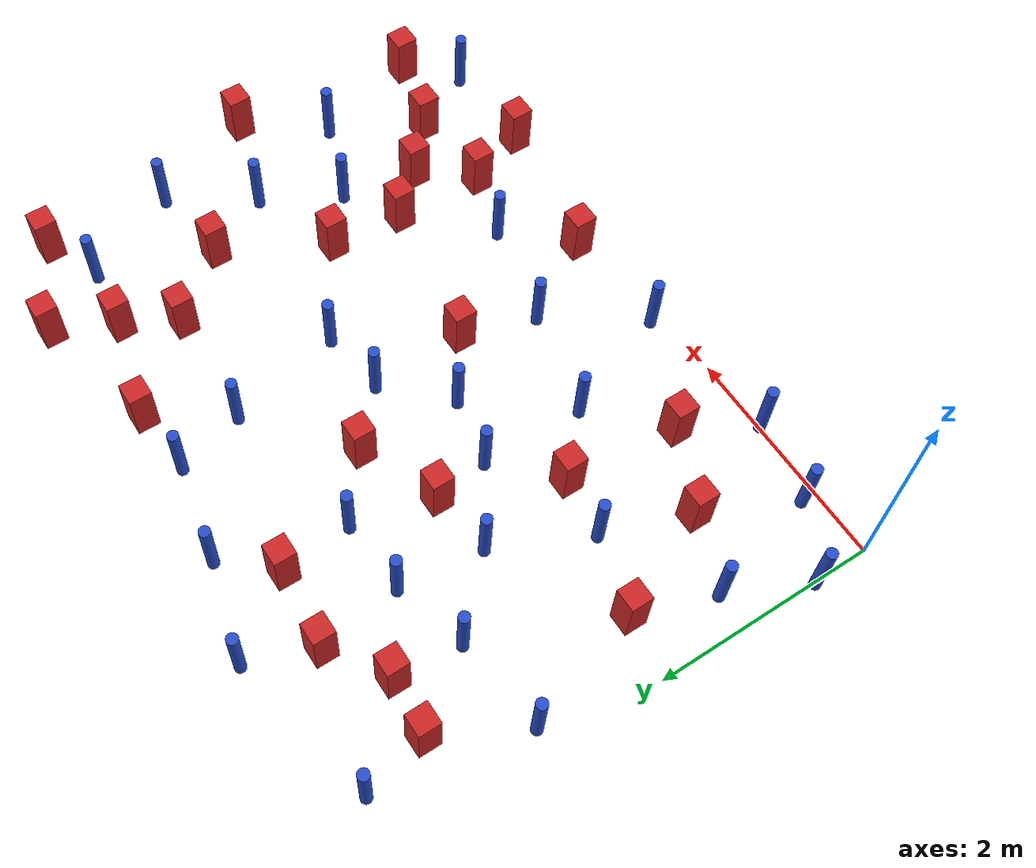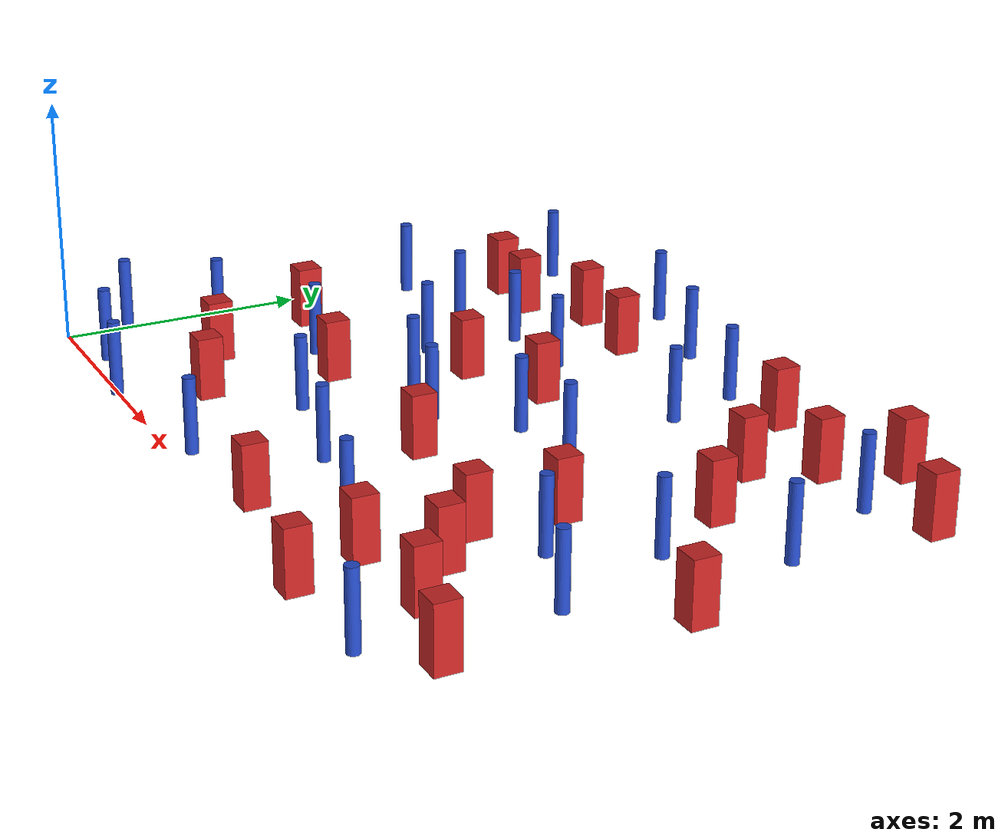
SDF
<sdf version="1.6">
 <model name="dense_10">
  <model name="pole_obstacle4">
   <static>true</static>
   <pose>6.03136823341 3.07508010178 -9.47619616065e-06 5.49618799738e-07 2.36310414051e-07 -1.55090534805e-07</pose>
   <link name="link">
    <pose>0 0 0.3 0 -0 0</pose>
    <inertial>
     <mass>1</mass>
     <inertia><ixx>0.145833</ixx><ixy>0</ixy><ixz>0</ixz><iyy>0.145833</iyy><iyz>0</iyz><izz>0.125</izz></inertia>
    </inertial>
    <collision name="collision">
     <geometry><cylinder><radius>0.05</radius><length>.6</length></cylinder></geometry>
    </collision>
    <visual name="visual">
     <geometry><cylinder><radius>0.05</radius><length>.6</length></cylinder></geometry>
     <material>
      <script><name>Gazebo/Blue</name><uri>file://media/materials/scripts/gazebo.material</uri></script>
     </material>
    </visual>
   </link>
  </model>
  <model name="square_post_obstacle9">
   <static>true</static>
   <pose>5.49992778663 0.636190954281 -6.11067671241e-07 -5.50515727128e-06 -8.79689657224e-07 2.37013304536e-05</pose>
   <link name="link">
    <pose>0 0 0.25 0 -0 0</pose>
    <inertial>
     <mass>100</mass>
     <inertia>
      <ixx>0.166667</ixx>
      <ixy>0</ixy>
      <ixz>0</ixz>
      <iyy>0.166667</iyy>
      <iyz>0</iyz>
      <izz>0.166667</izz>
     </inertia>
    </inertial>
    <collision name="collision"><geometry><box><size>.2 .2 .5</size></box></geometry></collision>
    <visual name="visual">
     <geometry><box><size>.2 .2 .5</size></box></geometry>
     <material>
      <script><name>Gazebo/Red</name><uri>file://media/materials/scripts/gazebo.material</uri></script>
     </material>
    </visual>
   </link>
  </model>
  <model name="square_post_obstacle21">
   <static>true</static>
   <pose>4.76312795238 3.55337894419 -6.11067671241e-07 -5.50515727128e-06 -8.79689657224e-07 2.37013304536e-05</pose>
   <link name="link">
    <pose>0 0 0.25 0 -0 0</pose>
    <inertial>
     <mass>100</mass>
     <inertia>
      <ixx>0.166667</ixx>
      <ixy>0</ixy>
      <ixz>0</ixz>
      <iyy>0.166667</iyy>
      <iyz>0</iyz>
      <izz>0.166667</izz>
     </inertia>
    </inertial>
    <collision name="collision"><geometry><box><size>.2 .2 .5</size></box></geometry></collision>
    <visual name="visual">
     <geometry><box><size>.2 .2 .5</size></box></geometry>
     <material>
      <script><name>Gazebo/Red</name><uri>file://media/materials/scripts/gazebo.material</uri></script>
     </material>
    </visual>
   </link>
  </model>
  <model name="pole_obstacle17">
   <static>true</static>
   <pose>4.11376594674 0.73467394082 -9.47619616065e-06 5.49618799737e-07 2.36310414061e-07 -1.550905348e-07</pose>
   <link name="link">
    <pose>0 0 0.3 0 -0 0</pose>
    <inertial>
     <mass>1</mass>
     <inertia><ixx>0.145833</ixx><ixy>0</ixy><ixz>0</ixz><iyy>0.145833</iyy><iyz>0</iyz><izz>0.125</izz></inertia>
    </inertial>
    <collision name="collision">
     <geometry><cylinder><radius>0.05</radius><length>.6</length></cylinder></geometry>
    </collision>
    <visual name="visual">
     <geometry><cylinder><radius>0.05</radius><length>.6</length></cylinder></geometry>
     <material>
      <script><name>Gazebo/Blue</name><uri>file://media/materials/scripts/gazebo.material</uri></script>
     </material>
    </visual>
   </link>
  </model>
  <model name="square_post_obstacle26">
   <static>true</static>
   <pose>6.20949902412 0.426637564775 -6.11067671241e-07 -5.50515727128e-06 -8.79689657224e-07 2.37013304536e-05</pose>
   <link name="link">
    <pose>0 0 0.25 0 -0 0</pose>
    <inertial>
     <mass>100</mass>
     <inertia>
      <ixx>0.166667</ixx>
      <ixy>0</ixy>
      <ixz>0</ixz>
      <iyy>0.166667</iyy>
      <iyz>0</iyz>
      <izz>0.166667</izz>
     </inertia>
    </inertial>
    <collision name="collision"><geometry><box><size>.2 .2 .5</size></box></geometry></collision>
    <visual name="visual">
     <geometry><box><size>.2 .2 .5</size></box></geometry>
     <material>
      <script><name>Gazebo/Red</name><uri>file://media/materials/scripts/gazebo.material</uri></script>
     </material>
    </visual>
   </link>
  </model>
  <model name="pole_obstacle22">
   <static>true</static>
   <pose>5.20940424091 1.68204271585 -9.47619616065e-06 5.49618799738e-07 2.36310414071e-07 -1.55090534796e-07</pose>
   <link name="link">
    <pose>0 0 0.3 0 -0 0</pose>
    <inertial>
     <mass>1</mass>
     <inertia><ixx>0.145833</ixx><ixy>0</ixy><ixz>0</ixz><iyy>0.145833</iyy><iyz>0</iyz><izz>0.125</izz></inertia>
    </inertial>
    <collision name="collision">
     <geometry><cylinder><radius>0.05</radius><length>.6</length></cylinder></geometry>
    </collision>
    <visual name="visual">
     <geometry><cylinder><radius>0.05</radius><length>.6</length></cylinder></geometry>
     <material>
      <script><name>Gazebo/Blue</name><uri>file://media/materials/scripts/gazebo.material</uri></script>
     </material>
    </visual>
   </link>
  </model>
  <model name="pole_obstacle25">
   <static>true</static>
   <pose>1.81143948928 4.63034651478 -9.47619616065e-06 5.49618799737e-07 2.36310414061e-07 -1.550905348e-07</pose>
   <link name="link">
    <pose>0 0 0.3 0 -0 0</pose>
    <inertial>
     <mass>1</mass>
     <inertia><ixx>0.145833</ixx><ixy>0</ixy><ixz>0</ixz><iyy>0.145833</iyy><iyz>0</iyz><izz>0.125</izz></inertia>
    </inertial>
    <collision name="collision">
     <geometry><cylinder><radius>0.05</radius><length>.6</length></cylinder></geometry>
    </collision>
    <visual name="visual">
     <geometry><cylinder><radius>0.05</radius><length>.6</length></cylinder></geometry>
     <material>
      <script><name>Gazebo/Blue</name><uri>file://media/materials/scripts/gazebo.material</uri></script>
     </material>
    </visual>
   </link>
  </model>
  <model name="pole_obstacle26">
   <static>true</static>
   <pose>1.04624911223 3.11739317264 -9.47619616065e-06 5.49618799737e-07 2.36310414062e-07 -1.55090534798e-07</pose>
   <link name="link">
    <pose>0 0 0.3 0 -0 0</pose>
    <inertial>
     <mass>1</mass>
     <inertia><ixx>0.145833</ixx><ixy>0</ixy><ixz>0</ixz><iyy>0.145833</iyy><iyz>0</iyz><izz>0.125</izz></inertia>
    </inertial>
    <collision name="collision">
     <geometry><cylinder><radius>0.05</radius><length>.6</length></cylinder></geometry>
    </collision>
    <visual name="visual">
     <geometry><cylinder><radius>0.05</radius><length>.6</length></cylinder></geometry>
     <material>
      <script><name>Gazebo/Blue</name><uri>file://media/materials/scripts/gazebo.material</uri></script>
     </material>
    </visual>
   </link>
  </model>
  <model name="square_post_obstacle32">
   <static>true</static>
   <pose>6.10313526223 4.17710607402 -6.11067671241e-07 -5.50515727128e-06 -8.79689657224e-07 2.37013304536e-05</pose>
   <link name="link">
    <pose>0 0 0.25 0 -0 0</pose>
    <inertial>
     <mass>100</mass>
     <inertia>
      <ixx>0.166667</ixx>
      <ixy>0</ixy>
      <ixz>0</ixz>
      <iyy>0.166667</iyy>
      <iyz>0</iyz>
      <izz>0.166667</izz>
     </inertia>
    </inertial>
    <collision name="collision"><geometry><box><size>.2 .2 .5</size></box></geometry></collision>
    <visual name="visual">
     <geometry><box><size>.2 .2 .5</size></box></geometry>
     <material>
      <script><name>Gazebo/Red</name><uri>file://media/materials/scripts/gazebo.material</uri></script>
     </material>
    </visual>
   </link>
  </model>
  <model name="pole_obstacle31">
   <static>true</static>
   <pose>2.62363226524 0.143062718524 -9.47619616065e-06 5.49618799737e-07 2.36310414074e-07 -1.55090534793e-07</pose>
   <link name="link">
    <pose>0 0 0.3 0 -0 0</pose>
    <inertial>
     <mass>1</mass>
     <inertia><ixx>0.145833</ixx><ixy>0</ixy><ixz>0</ixz><iyy>0.145833</iyy><iyz>0</iyz><izz>0.125</izz></inertia>
    </inertial>
    <collision name="collision">
     <geometry><cylinder><radius>0.05</radius><length>.6</length></cylinder></geometry>
    </collision>
    <visual name="visual">
     <geometry><cylinder><radius>0.05</radius><length>.6</length></cylinder></geometry>
     <material>
      <script><name>Gazebo/Blue</name><uri>file://media/materials/scripts/gazebo.material</uri></script>
     </material>
    </visual>
   </link>
  </model>
  <model name="square_post_obstacle35">
   <static>true</static>
   <pose>0.543536510192 1.92201793213 -6.11067671241e-07 -5.50515727128e-06 -8.79689657224e-07 2.37013304536e-05</pose>
   <link name="link">
    <pose>0 0 0.25 0 -0 0</pose>
    <inertial>
     <mass>100</mass>
     <inertia>
      <ixx>0.166667</ixx>
      <ixy>0</ixy>
      <ixz>0</ixz>
      <iyy>0.166667</iyy>
      <iyz>0</iyz>
      <izz>0.166667</izz>
     </inertia>
    </inertial>
    <collision name="collision"><geometry><box><size>.2 .2 .5</size></box></geometry></collision>
    <visual name="visual">
     <geometry><box><size>.2 .2 .5</size></box></geometry>
     <material>
      <script><name>Gazebo/Red</name><uri>file://media/materials/scripts/gazebo.material</uri></script>
     </material>
    </visual>
   </link>
  </model>
  <model name="square_post_obstacle38">
   <static>true</static>
   <pose>6.42329930709 2.0872438362 -6.11067671241e-07 -5.50515727128e-06 -8.79689657224e-07 2.37013304536e-05</pose>
   <link name="link">
    <pose>0 0 0.25 0 -0 0</pose>
    <inertial>
     <mass>100</mass>
     <inertia>
      <ixx>0.166667</ixx>
      <ixy>0</ixy>
      <ixz>0</ixz>
      <iyy>0.166667</iyy>
      <iyz>0</iyz>
      <izz>0.166667</izz>
     </inertia>
    </inertial>
    <collision name="collision"><geometry><box><size>.2 .2 .5</size></box></geometry></collision>
    <visual name="visual">
     <geometry><box><size>.2 .2 .5</size></box></geometry>
     <material>
      <script><name>Gazebo/Red</name><uri>file://media/materials/scripts/gazebo.material</uri></script>
     </material>
    </visual>
   </link>
  </model>
  <model name="square_post_obstacle45">
   <static>true</static>
   <pose>4.77510436136 2.04874685066 -6.11067671241e-07 -5.50515727128e-06 -8.79689657224e-07 2.37013304536e-05</pose>
   <link name="link">
    <pose>0 0 0.25 0 -0 0</pose>
    <inertial>
     <mass>100</mass>
     <inertia>
      <ixx>0.166667</ixx>
      <ixy>0</ixy>
      <ixz>0</ixz>
      <iyy>0.166667</iyy>
      <iyz>0</iyz>
      <izz>0.166667</izz>
     </inertia>
    </inertial>
    <collision name="collision"><geometry><box><size>.2 .2 .5</size></box></geometry></collision>
    <visual name="visual">
     <geometry><box><size>.2 .2 .5</size></box></geometry>
     <material>
      <script><name>Gazebo/Red</name><uri>file://media/materials/scripts/gazebo.material</uri></script>
     </material>
    </visual>
   </link>
  </model>
  <model name="square_post_obstacle55">
   <static>true</static>
   <pose>0.956043026727 0.971176708894 -6.11067671241e-07 -5.50515727128e-06 -8.79689657224e-07 2.37013304536e-05</pose>
   <link name="link">
    <pose>0 0 0.25 0 -0 0</pose>
    <inertial>
     <mass>100</mass>
     <inertia>
      <ixx>0.166667</ixx>
      <ixy>0</ixy>
      <ixz>0</ixz>
      <iyy>0.166667</iyy>
      <iyz>0</iyz>
      <izz>0.166667</izz>
     </inertia>
    </inertial>
    <collision name="collision"><geometry><box><size>.2 .2 .5</size></box></geometry></collision>
    <visual name="visual">
     <geometry><box><size>.2 .2 .5</size></box></geometry>
     <material>
      <script><name>Gazebo/Red</name><uri>file://media/materials/scripts/gazebo.material</uri></script>
     </material>
    </visual>
   </link>
  </model>
  <model name="pole_obstacle53">
   <static>true</static>
   <pose>5.57172280352 2.35855380298 -9.47619616065e-06 5.49618799738e-07 2.36310414051e-07 -1.55090534805e-07</pose>
   <link name="link">
    <pose>0 0 0.3 0 -0 0</pose>
    <inertial>
     <mass>1</mass>
     <inertia><ixx>0.145833</ixx><ixy>0</ixy><ixz>0</ixz><iyy>0.145833</iyy><iyz>0</iyz><izz>0.125</izz></inertia>
    </inertial>
    <collision name="collision">
     <geometry><cylinder><radius>0.05</radius><length>.6</length></cylinder></geometry>
    </collision>
    <visual name="visual">
     <geometry><cylinder><radius>0.05</radius><length>.6</length></cylinder></geometry>
     <material>
      <script><name>Gazebo/Blue</name><uri>file://media/materials/scripts/gazebo.material</uri></script>
     </material>
    </visual>
   </link>
  </model>
  <model name="square_post_obstacle59">
   <static>true</static>
   <pose>2.28770426226 3.97748539182 -6.11067671241e-07 -5.50515727128e-06 -8.79689657224e-07 2.37013304536e-05</pose>
   <link name="link">
    <pose>0 0 0.25 0 -0 0</pose>
    <inertial>
     <mass>100</mass>
     <inertia>
      <ixx>0.166667</ixx>
      <ixy>0</ixy>
      <ixz>0</ixz>
      <iyy>0.166667</iyy>
      <iyz>0</iyz>
      <izz>0.166667</izz>
     </inertia>
    </inertial>
    <collision name="collision"><geometry><box><size>.2 .2 .5</size></box></geometry></collision>
    <visual name="visual">
     <geometry><box><size>.2 .2 .5</size></box></geometry>
     <material>
      <script><name>Gazebo/Red</name><uri>file://media/materials/scripts/gazebo.material</uri></script>
     </material>
    </visual>
   </link>
  </model>
  <model name="pole_obstacle56">
   <static>true</static>
   <pose>3.94006318743 2.56893522679 -9.47619616065e-06 5.49618799737e-07 2.36310414051e-07 -1.55090534807e-07</pose>
   <link name="link">
    <pose>0 0 0.3 0 -0 0</pose>
    <inertial>
     <mass>1</mass>
     <inertia><ixx>0.145833</ixx><ixy>0</ixy><ixz>0</ixz><iyy>0.145833</iyy><iyz>0</iyz><izz>0.125</izz></inertia>
    </inertial>
    <collision name="collision">
     <geometry><cylinder><radius>0.05</radius><length>.6</length></cylinder></geometry>
    </collision>
    <visual name="visual">
     <geometry><cylinder><radius>0.05</radius><length>.6</length></cylinder></geometry>
     <material>
      <script><name>Gazebo/Blue</name><uri>file://media/materials/scripts/gazebo.material</uri></script>
     </material>
    </visual>
   </link>
  </model>
  <model name="square_post_obstacle64">
   <static>true</static>
   <pose>2.87716898346 2.91878968591 -6.11067671241e-07 -5.50515727128e-06 -8.79689657224e-07 2.37013304536e-05</pose>
   <link name="link">
    <pose>0 0 0.25 0 -0 0</pose>
    <inertial>
     <mass>100</mass>
     <inertia>
      <ixx>0.166667</ixx>
      <ixy>0</ixy>
      <ixz>0</ixz>
      <iyy>0.166667</iyy>
      <iyz>0</iyz>
      <izz>0.166667</izz>
     </inertia>
    </inertial>
    <collision name="collision"><geometry><box><size>.2 .2 .5</size></box></geometry></collision>
    <visual name="visual">
     <geometry><box><size>.2 .2 .5</size></box></geometry>
     <material>
      <script><name>Gazebo/Red</name><uri>file://media/materials/scripts/gazebo.material</uri></script>
     </material>
    </visual>
   </link>
  </model>
  <model name="square_post_obstacle66">
   <static>true</static>
   <pose>0.594225724342 3.76275228831 -6.11067671241e-07 -5.50515727128e-06 -8.79689657224e-07 2.37013304536e-05</pose>
   <link name="link">
    <pose>0 0 0.25 0 -0 0</pose>
    <inertial>
     <mass>100</mass>
     <inertia>
      <ixx>0.166667</ixx>
      <ixy>0</ixy>
      <ixz>0</ixz>
      <iyy>0.166667</iyy>
      <iyz>0</iyz>
      <izz>0.166667</izz>
     </inertia>
    </inertial>
    <collision name="collision"><geometry><box><size>.2 .2 .5</size></box></geometry></collision>
    <visual name="visual">
     <geometry><box><size>.2 .2 .5</size></box></geometry>
     <material>
      <script><name>Gazebo/Red</name><uri>file://media/materials/scripts/gazebo.material</uri></script>
     </material>
    </visual>
   </link>
  </model>
  <model name="pole_obstacle65">
   <static>true</static>
   <pose>1.69548008049 3.30099055279 -9.47619616065e-06 5.49618799737e-07 2.36310414062e-07 -1.55090534798e-07</pose>
   <link name="link">
    <pose>0 0 0.3 0 -0 0</pose>
    <inertial>
     <mass>1</mass>
     <inertia><ixx>0.145833</ixx><ixy>0</ixy><ixz>0</ixz><iyy>0.145833</iyy><iyz>0</iyz><izz>0.125</izz></inertia>
    </inertial>
    <collision name="collision">
     <geometry><cylinder><radius>0.05</radius><length>.6</length></cylinder></geometry>
    </collision>
    <visual name="visual">
     <geometry><cylinder><radius>0.05</radius><length>.6</length></cylinder></geometry>
     <material>
      <script><name>Gazebo/Blue</name><uri>file://media/materials/scripts/gazebo.material</uri></script>
     </material>
    </visual>
   </link>
  </model>
  <model name="pole_obstacle70">
   <static>true</static>
   <pose>5.80971211072 0.0287064600149 -9.47619616065e-06 5.49618799737e-07 2.36310414077e-07 -1.55090534792e-07</pose>
   <link name="link">
    <pose>0 0 0.3 0 -0 0</pose>
    <inertial>
     <mass>1</mass>
     <inertia><ixx>0.145833</ixx><ixy>0</ixy><ixz>0</ixz><iyy>0.145833</iyy><iyz>0</iyz><izz>0.125</izz></inertia>
    </inertial>
    <collision name="collision">
     <geometry><cylinder><radius>0.05</radius><length>.6</length></cylinder></geometry>
    </collision>
    <visual name="visual">
     <geometry><cylinder><radius>0.05</radius><length>.6</length></cylinder></geometry>
     <material>
      <script><name>Gazebo/Blue</name><uri>file://media/materials/scripts/gazebo.material</uri></script>
     </material>
    </visual>
   </link>
  </model>
  <model name="square_post_obstacle76">
   <static>true</static>
   <pose>5.02520661884 4.02187210519 -6.11067671241e-07 -5.50515727128e-06 -8.79689657224e-07 2.37013304536e-05</pose>
   <link name="link">
    <pose>0 0 0.25 0 -0 0</pose>
    <inertial>
     <mass>100</mass>
     <inertia>
      <ixx>0.166667</ixx>
      <ixy>0</ixy>
      <ixz>0</ixz>
      <iyy>0.166667</iyy>
      <iyz>0</iyz>
      <izz>0.166667</izz>
     </inertia>
    </inertial>
    <collision name="collision"><geometry><box><size>.2 .2 .5</size></box></geometry></collision>
    <visual name="visual">
     <geometry><box><size>.2 .2 .5</size></box></geometry>
     <material>
      <script><name>Gazebo/Red</name><uri>file://media/materials/scripts/gazebo.material</uri></script>
     </material>
    </visual>
   </link>
  </model>
  <model name="pole_obstacle78">
   <static>true</static>
   <pose>3.3444445971 2.48638642715 -9.47619616065e-06 5.49618799737e-07 2.36310414051e-07 -1.55090534807e-07</pose>
   <link name="link">
    <pose>0 0 0.3 0 -0 0</pose>
    <inertial>
     <mass>1</mass>
     <inertia><ixx>0.145833</ixx><ixy>0</ixy><ixz>0</ixz><iyy>0.145833</iyy><iyz>0</iyz><izz>0.125</izz></inertia>
    </inertial>
    <collision name="collision">
     <geometry><cylinder><radius>0.05</radius><length>.6</length></cylinder></geometry>
    </collision>
    <visual name="visual">
     <geometry><cylinder><radius>0.05</radius><length>.6</length></cylinder></geometry>
     <material>
      <script><name>Gazebo/Blue</name><uri>file://media/materials/scripts/gazebo.material</uri></script>
     </material>
    </visual>
   </link>
  </model>
  <model name="pole_obstacle91">
   <static>true</static>
   <pose>0.593901031181 0.151786869909 -9.47619616065e-06 5.49618799737e-07 2.36310414066e-07 -1.55090534796e-07</pose>
   <link name="link">
    <pose>0 0 0.3 0 -0 0</pose>
    <inertial>
     <mass>1</mass>
     <inertia><ixx>0.145833</ixx><ixy>0</ixy><ixz>0</ixz><iyy>0.145833</iyy><iyz>0</iyz><izz>0.125</izz></inertia>
    </inertial>
    <collision name="collision">
     <geometry><cylinder><radius>0.05</radius><length>.6</length></cylinder></geometry>
    </collision>
    <visual name="visual">
     <geometry><cylinder><radius>0.05</radius><length>.6</length></cylinder></geometry>
     <material>
      <script><name>Gazebo/Blue</name><uri>file://media/materials/scripts/gazebo.material</uri></script>
     </material>
    </visual>
   </link>
  </model>
  <model name="square_post_obstacle86">
   <static>true</static>
   <pose>4.12705564856 4.26437114528 -6.11067671241e-07 -5.50515727128e-06 -8.79689657224e-07 2.37013304536e-05</pose>
   <link name="link">
    <pose>0 0 0.25 0 -0 0</pose>
    <inertial>
     <mass>100</mass>
     <inertia>
      <ixx>0.166667</ixx>
      <ixy>0</ixy>
      <ixz>0</ixz>
      <iyy>0.166667</iyy>
      <iyz>0</iyz>
      <izz>0.166667</izz>
     </inertia>
    </inertial>
    <collision name="collision"><geometry><box><size>.2 .2 .5</size></box></geometry></collision>
    <visual name="visual">
     <geometry><box><size>.2 .2 .5</size></box></geometry>
     <material>
      <script><name>Gazebo/Red</name><uri>file://media/materials/scripts/gazebo.material</uri></script>
     </material>
    </visual>
   </link>
  </model>
  <model name="pole_obstacle98">
   <static>true</static>
   <pose>3.17798759059 0.954318729513 -9.47619616065e-06 5.49618799738e-07 2.36310414064e-07 -1.55090534798e-07</pose>
   <link name="link">
    <pose>0 0 0.3 0 -0 0</pose>
    <inertial>
     <mass>1</mass>
     <inertia><ixx>0.145833</ixx><ixy>0</ixy><ixz>0</ixz><iyy>0.145833</iyy><iyz>0</iyz><izz>0.125</izz></inertia>
    </inertial>
    <collision name="collision">
     <geometry><cylinder><radius>0.05</radius><length>.6</length></cylinder></geometry>
    </collision>
    <visual name="visual">
     <geometry><cylinder><radius>0.05</radius><length>.6</length></cylinder></geometry>
     <material>
      <script><name>Gazebo/Blue</name><uri>file://media/materials/scripts/gazebo.material</uri></script>
     </material>
    </visual>
   </link>
  </model>
  <model name="pole_obstacle99">
   <static>true</static>
   <pose>5.93183227462 1.40588617037 -9.47619616065e-06 5.49618799738e-07 2.36310414071e-07 -1.55090534796e-07</pose>
   <link name="link">
    <pose>0 0 0.3 0 -0 0</pose>
    <inertial>
     <mass>1</mass>
     <inertia><ixx>0.145833</ixx><ixy>0</ixy><ixz>0</ixz><iyy>0.145833</iyy><iyz>0</iyz><izz>0.125</izz></inertia>
    </inertial>
    <collision name="collision">
     <geometry><cylinder><radius>0.05</radius><length>.6</length></cylinder></geometry>
    </collision>
    <visual name="visual">
     <geometry><cylinder><radius>0.05</radius><length>.6</length></cylinder></geometry>
     <material>
      <script><name>Gazebo/Blue</name><uri>file://media/materials/scripts/gazebo.material</uri></script>
     </material>
    </visual>
   </link>
  </model>
  <model name="pole_obstacle107">
   <static>true</static>
   <pose>2.84973103692 1.98662477839 -9.47619616065e-06 5.49618799737e-07 2.36310414056e-07 -1.55090534804e-07</pose>
   <link name="link">
    <pose>0 0 0.3 0 -0 0</pose>
    <inertial>
     <mass>1</mass>
     <inertia><ixx>0.145833</ixx><ixy>0</ixy><ixz>0</ixz><iyy>0.145833</iyy><iyz>0</iyz><izz>0.125</izz></inertia>
    </inertial>
    <collision name="collision">
     <geometry><cylinder><radius>0.05</radius><length>.6</length></cylinder></geometry>
    </collision>
    <visual name="visual">
     <geometry><cylinder><radius>0.05</radius><length>.6</length></cylinder></geometry>
     <material>
      <script><name>Gazebo/Blue</name><uri>file://media/materials/scripts/gazebo.material</uri></script>
     </material>
    </visual>
   </link>
  </model>
  <model name="square_post_obstacle95">
   <static>true</static>
   <pose>5.28995313992 4.54875250621 -6.11067671241e-07 -5.50515727128e-06 -8.79689657224e-07 2.37013304536e-05</pose>
   <link name="link">
    <pose>0 0 0.25 0 -0 0</pose>
    <inertial>
     <mass>100</mass>
     <inertia>
      <ixx>0.166667</ixx>
      <ixy>0</ixy>
      <ixz>0</ixz>
      <iyy>0.166667</iyy>
      <iyz>0</iyz>
      <izz>0.166667</izz>
     </inertia>
    </inertial>
    <collision name="collision"><geometry><box><size>.2 .2 .5</size></box></geometry></collision>
    <visual name="visual">
     <geometry><box><size>.2 .2 .5</size></box></geometry>
     <material>
      <script><name>Gazebo/Red</name><uri>file://media/materials/scripts/gazebo.material</uri></script>
     </material>
    </visual>
   </link>
  </model>
  <model name="pole_obstacle113">
   <static>true</static>
   <pose>0.205688937744 3.01035151159 -9.4761961606e-06 5.49618799729e-07 2.36310413995e-07 -1.55090534826e-07</pose>
   <link name="link">
    <pose>0 0 0.3 0 -0 0</pose>
    <inertial>
     <mass>1</mass>
     <inertia><ixx>0.145833</ixx><ixy>0</ixy><ixz>0</ixz><iyy>0.145833</iyy><iyz>0</iyz><izz>0.125</izz></inertia>
    </inertial>
    <collision name="collision">
     <geometry><cylinder><radius>0.05</radius><length>.6</length></cylinder></geometry>
    </collision>
    <visual name="visual">
     <geometry><cylinder><radius>0.05</radius><length>.6</length></cylinder></geometry>
     <material>
      <script><name>Gazebo/Blue</name><uri>file://media/materials/scripts/gazebo.material</uri></script>
     </material>
    </visual>
   </link>
  </model>
  <model name="square_post_obstacle106">
   <static>true</static>
   <pose>4.72211842145 1.38666754498 -6.11067671241e-07 -5.50515727128e-06 -8.79689657224e-07 2.37013304536e-05</pose>
   <link name="link">
    <pose>0 0 0.25 0 -0 0</pose>
    <inertial>
     <mass>100</mass>
     <inertia>
      <ixx>0.166667</ixx>
      <ixy>0</ixy>
      <ixz>0</ixz>
      <iyy>0.166667</iyy>
      <iyz>0</iyz>
      <izz>0.166667</izz>
     </inertia>
    </inertial>
    <collision name="collision"><geometry><box><size>.2 .2 .5</size></box></geometry></collision>
    <visual name="visual">
     <geometry><box><size>.2 .2 .5</size></box></geometry>
     <material>
      <script><name>Gazebo/Red</name><uri>file://media/materials/scripts/gazebo.material</uri></script>
     </material>
    </visual>
   </link>
  </model>
  <model name="square_post_obstacle111">
   <static>true</static>
   <pose>4.91434129175 0.00712274639897 -6.11067671241e-07 -5.50515727128e-06 -8.79689657224e-07 2.37013304536e-05</pose>
   <link name="link">
    <pose>0 0 0.25 0 -0 0</pose>
    <inertial>
     <mass>100</mass>
     <inertia>
      <ixx>0.166667</ixx>
      <ixy>0</ixy>
      <ixz>0</ixz>
      <iyy>0.166667</iyy>
      <iyz>0</iyz>
      <izz>0.166667</izz>
     </inertia>
    </inertial>
    <collision name="collision"><geometry><box><size>.2 .2 .5</size></box></geometry></collision>
    <visual name="visual">
     <geometry><box><size>.2 .2 .5</size></box></geometry>
     <material>
      <script><name>Gazebo/Red</name><uri>file://media/materials/scripts/gazebo.material</uri></script>
     </material>
    </visual>
   </link>
  </model>
  <model name="square_post_obstacle114">
   <static>true</static>
   <pose>5.07233482611 1.00871836087 -6.11067671241e-07 -5.50515727128e-06 -8.79689657224e-07 2.37013304536e-05</pose>
   <link name="link">
    <pose>0 0 0.25 0 -0 0</pose>
    <inertial>
     <mass>100</mass>
     <inertia>
      <ixx>0.166667</ixx>
      <ixy>0</ixy>
      <ixz>0</ixz>
      <iyy>0.166667</iyy>
      <iyz>0</iyz>
      <izz>0.166667</izz>
     </inertia>
    </inertial>
    <collision name="collision"><geometry><box><size>.2 .2 .5</size></box></geometry></collision>
    <visual name="visual">
     <geometry><box><size>.2 .2 .5</size></box></geometry>
     <material>
      <script><name>Gazebo/Red</name><uri>file://media/materials/scripts/gazebo.material</uri></script>
     </material>
    </visual>
   </link>
  </model>
  <model name="pole_obstacle131">
   <static>true</static>
   <pose>1.3116827945 -0.000944110392771 -9.47619616065e-06 5.49618799737e-07 2.36310414063e-07 -1.550905348e-07</pose>
   <link name="link">
    <pose>0 0 0.3 0 -0 0</pose>
    <inertial>
     <mass>1</mass>
     <inertia><ixx>0.145833</ixx><ixy>0</ixy><ixz>0</ixz><iyy>0.145833</iyy><iyz>0</iyz><izz>0.125</izz></inertia>
    </inertial>
    <collision name="collision">
     <geometry><cylinder><radius>0.05</radius><length>.6</length></cylinder></geometry>
    </collision>
    <visual name="visual">
     <geometry><cylinder><radius>0.05</radius><length>.6</length></cylinder></geometry>
     <material>
      <script><name>Gazebo/Blue</name><uri>file://media/materials/scripts/gazebo.material</uri></script>
     </material>
    </visual>
   </link>
  </model>
  <model name="square_post_obstacle117">
   <static>true</static>
   <pose>5.26643442196 2.96693600663 -6.11067671241e-07 -5.50515727128e-06 -8.79689657224e-07 2.37013304536e-05</pose>
   <link name="link">
    <pose>0 0 0.25 0 -0 0</pose>
    <inertial>
     <mass>100</mass>
     <inertia>
      <ixx>0.166667</ixx>
      <ixy>0</ixy>
      <ixz>0</ixz>
      <iyy>0.166667</iyy>
      <iyz>0</iyz>
      <izz>0.166667</izz>
     </inertia>
    </inertial>
    <collision name="collision"><geometry><box><size>.2 .2 .5</size></box></geometry></collision>
    <visual name="visual">
     <geometry><box><size>.2 .2 .5</size></box></geometry>
     <material>
      <script><name>Gazebo/Red</name><uri>file://media/materials/scripts/gazebo.material</uri></script>
     </material>
    </visual>
   </link>
  </model>
  <model name="pole_obstacle141">
   <static>true</static>
   <pose>1.22833682217 1.71588375991 -9.47619616065e-06 5.49618799737e-07 2.36310414065e-07 -1.55090534798e-07</pose>
   <link name="link">
    <pose>0 0 0.3 0 -0 0</pose>
    <inertial>
     <mass>1</mass>
     <inertia><ixx>0.145833</ixx><ixy>0</ixy><ixz>0</ixz><iyy>0.145833</iyy><iyz>0</iyz><izz>0.125</izz></inertia>
    </inertial>
    <collision name="collision">
     <geometry><cylinder><radius>0.05</radius><length>.6</length></cylinder></geometry>
    </collision>
    <visual name="visual">
     <geometry><cylinder><radius>0.05</radius><length>.6</length></cylinder></geometry>
     <material>
      <script><name>Gazebo/Blue</name><uri>file://media/materials/scripts/gazebo.material</uri></script>
     </material>
    </visual>
   </link>
  </model>
  <model name="pole_obstacle144">
   <static>true</static>
   <pose>-0.011041065608 0.519506056617 -9.47619616065e-06 5.49618799737e-07 2.36310414057e-07 -1.55090534801e-07</pose>
   <link name="link">
    <pose>0 0 0.3 0 -0 0</pose>
    <inertial>
     <mass>1</mass>
     <inertia><ixx>0.145833</ixx><ixy>0</ixy><ixz>0</ixz><iyy>0.145833</iyy><iyz>0</iyz><izz>0.125</izz></inertia>
    </inertial>
    <collision name="collision">
     <geometry><cylinder><radius>0.05</radius><length>.6</length></cylinder></geometry>
    </collision>
    <visual name="visual">
     <geometry><cylinder><radius>0.05</radius><length>.6</length></cylinder></geometry>
     <material>
      <script><name>Gazebo/Blue</name><uri>file://media/materials/scripts/gazebo.material</uri></script>
     </material>
    </visual>
   </link>
  </model>
  <model name="pole_obstacle148">
   <static>true</static>
   <pose>3.70387304529 3.60541671973 -9.47619616065e-06 5.49618799737e-07 2.36310414051e-07 -1.55090534807e-07</pose>
   <link name="link">
    <pose>0 0 0.3 0 -0 0</pose>
    <inertial>
     <mass>1</mass>
     <inertia><ixx>0.145833</ixx><ixy>0</ixy><ixz>0</ixz><iyy>0.145833</iyy><iyz>0</iyz><izz>0.125</izz></inertia>
    </inertial>
    <collision name="collision">
     <geometry><cylinder><radius>0.05</radius><length>.6</length></cylinder></geometry>
    </collision>
    <visual name="visual">
     <geometry><cylinder><radius>0.05</radius><length>.6</length></cylinder></geometry>
     <material>
      <script><name>Gazebo/Blue</name><uri>file://media/materials/scripts/gazebo.material</uri></script>
     </material>
    </visual>
   </link>
  </model>
  <model name="pole_obstacle151">
   <static>true</static>
   <pose>2.67364805422 4.396603812 -9.47619616065e-06 5.49618799738e-07 2.3631041406e-07 -1.55090534801e-07</pose>
   <link name="link">
    <pose>0 0 0.3 0 -0 0</pose>
    <inertial>
     <mass>1</mass>
     <inertia><ixx>0.145833</ixx><ixy>0</ixy><ixz>0</ixz><iyy>0.145833</iyy><iyz>0</iyz><izz>0.125</izz></inertia>
    </inertial>
    <collision name="collision">
     <geometry><cylinder><radius>0.05</radius><length>.6</length></cylinder></geometry>
    </collision>
    <visual name="visual">
     <geometry><cylinder><radius>0.05</radius><length>.6</length></cylinder></geometry>
     <material>
      <script><name>Gazebo/Blue</name><uri>file://media/materials/scripts/gazebo.material</uri></script>
     </material>
    </visual>
   </link>
  </model>
  <model name="pole_obstacle159">
   <static>true</static>
   <pose>5.61471248972 3.96145432065 -9.47619616065e-06 5.49618799737e-07 2.36310414054e-07 -1.55090534804e-07</pose>
   <link name="link">
    <pose>0 0 0.3 0 -0 0</pose>
    <inertial>
     <mass>1</mass>
     <inertia><ixx>0.145833</ixx><ixy>0</ixy><ixz>0</ixz><iyy>0.145833</iyy><iyz>0</iyz><izz>0.125</izz></inertia>
    </inertial>
    <collision name="collision">
     <geometry><cylinder><radius>0.05</radius><length>.6</length></cylinder></geometry>
    </collision>
    <visual name="visual">
     <geometry><cylinder><radius>0.05</radius><length>.6</length></cylinder></geometry>
     <material>
      <script><name>Gazebo/Blue</name><uri>file://media/materials/scripts/gazebo.material</uri></script>
     </material>
    </visual>
   </link>
  </model>
  <model name="pole_obstacle160">
   <static>true</static>
   <pose>2.24860926116 2.11729141332 -9.47619616065e-06 5.49618799737e-07 2.36310414051e-07 -1.55090534807e-07</pose>
   <link name="link">
    <pose>0 0 0.3 0 -0 0</pose>
    <inertial>
     <mass>1</mass>
     <inertia><ixx>0.145833</ixx><ixy>0</ixy><ixz>0</ixz><iyy>0.145833</iyy><iyz>0</iyz><izz>0.125</izz></inertia>
    </inertial>
    <collision name="collision">
     <geometry><cylinder><radius>0.05</radius><length>.6</length></cylinder></geometry>
    </collision>
    <visual name="visual">
     <geometry><cylinder><radius>0.05</radius><length>.6</length></cylinder></geometry>
     <material>
      <script><name>Gazebo/Blue</name><uri>file://media/materials/scripts/gazebo.material</uri></script>
     </material>
    </visual>
   </link>
  </model>
  <model name="pole_obstacle163">
   <static>true</static>
   <pose>2.35426142133 3.33801655337 -9.47619616065e-06 5.49618799737e-07 2.36310414051e-07 -1.55090534807e-07</pose>
   <link name="link">
    <pose>0 0 0.3 0 -0 0</pose>
    <inertial>
     <mass>1</mass>
     <inertia><ixx>0.145833</ixx><ixy>0</ixy><ixz>0</ixz><iyy>0.145833</iyy><iyz>0</iyz><izz>0.125</izz></inertia>
    </inertial>
    <collision name="collision">
     <geometry><cylinder><radius>0.05</radius><length>.6</length></cylinder></geometry>
    </collision>
    <visual name="visual">
     <geometry><cylinder><radius>0.05</radius><length>.6</length></cylinder></geometry>
     <material>
      <script><name>Gazebo/Blue</name><uri>file://media/materials/scripts/gazebo.material</uri></script>
     </material>
    </visual>
   </link>
  </model>
  <model name="pole_obstacle186">
   <static>true</static>
   <pose>3.53318036778 4.21708177242 -9.47619616065e-06 5.49618799738e-07 2.3631041406e-07 -1.55090534801e-07</pose>
   <link name="link">
    <pose>0 0 0.3 0 -0 0</pose>
    <inertial>
     <mass>1</mass>
     <inertia><ixx>0.145833</ixx><ixy>0</ixy><ixz>0</ixz><iyy>0.145833</iyy><iyz>0</iyz><izz>0.125</izz></inertia>
    </inertial>
    <collision name="collision">
     <geometry><cylinder><radius>0.05</radius><length>.6</length></cylinder></geometry>
    </collision>
    <visual name="visual">
     <geometry><cylinder><radius>0.05</radius><length>.6</length></cylinder></geometry>
     <material>
      <script><name>Gazebo/Blue</name><uri>file://media/materials/scripts/gazebo.material</uri></script>
     </material>
    </visual>
   </link>
  </model>
  <model name="square_post_obstacle176">
   <static>true</static>
   <pose>1.09284360751 3.71484733262 -6.11067671241e-07 -5.50515727128e-06 -8.79689657224e-07 2.37013304536e-05</pose>
   <link name="link">
    <pose>0 0 0.25 0 -0 0</pose>
    <inertial>
     <mass>100</mass>
     <inertia>
      <ixx>0.166667</ixx>
      <ixy>0</ixy>
      <ixz>0</ixz>
      <iyy>0.166667</iyy>
      <iyz>0</iyz>
      <izz>0.166667</izz>
     </inertia>
    </inertial>
    <collision name="collision"><geometry><box><size>.2 .2 .5</size></box></geometry></collision>
    <visual name="visual">
     <geometry><box><size>.2 .2 .5</size></box></geometry>
     <material>
      <script><name>Gazebo/Red</name><uri>file://media/materials/scripts/gazebo.material</uri></script>
     </material>
    </visual>
   </link>
  </model>
  <model name="pole_obstacle190">
   <static>true</static>
   <pose>2.23350590372 1.17885435513 -9.47619616065e-06 5.49618799737e-07 2.36310414072e-07 -1.55090534793e-07</pose>
   <link name="link">
    <pose>0 0 0.3 0 -0 0</pose>
    <inertial>
     <mass>1</mass>
     <inertia><ixx>0.145833</ixx><ixy>0</ixy><ixz>0</ixz><iyy>0.145833</iyy><iyz>0</iyz><izz>0.125</izz></inertia>
    </inertial>
    <collision name="collision">
     <geometry><cylinder><radius>0.05</radius><length>.6</length></cylinder></geometry>
    </collision>
    <visual name="visual">
     <geometry><cylinder><radius>0.05</radius><length>.6</length></cylinder></geometry>
     <material>
      <script><name>Gazebo/Blue</name><uri>file://media/materials/scripts/gazebo.material</uri></script>
     </material>
    </visual>
   </link>
  </model>
  <model name="pole_obstacle192">
   <static>true</static>
   <pose>1.61364626472 2.54149946869 -9.47619616065e-06 5.49618799737e-07 2.36310414062e-07 -1.55090534798e-07</pose>
   <link name="link">
    <pose>0 0 0.3 0 -0 0</pose>
    <inertial>
     <mass>1</mass>
     <inertia><ixx>0.145833</ixx><ixy>0</ixy><ixz>0</ixz><iyy>0.145833</iyy><iyz>0</iyz><izz>0.125</izz></inertia>
    </inertial>
    <collision name="collision">
     <geometry><cylinder><radius>0.05</radius><length>.6</length></cylinder></geometry>
    </collision>
    <visual name="visual">
     <geometry><cylinder><radius>0.05</radius><length>.6</length></cylinder></geometry>
     <material>
      <script><name>Gazebo/Blue</name><uri>file://media/materials/scripts/gazebo.material</uri></script>
     </material>
    </visual>
   </link>
  </model>
  <model name="square_post_obstacle190">
   <static>true</static>
   <pose>1.7512788454 1.65218644638 -6.11067671241e-07 -5.50515727128e-06 -8.79689657224e-07 2.37013304536e-05</pose>
   <link name="link">
    <pose>0 0 0.25 0 -0 0</pose>
    <inertial>
     <mass>100</mass>
     <inertia>
      <ixx>0.166667</ixx>
      <ixy>0</ixy>
      <ixz>0</ixz>
      <iyy>0.166667</iyy>
      <iyz>0</iyz>
      <izz>0.166667</izz>
     </inertia>
    </inertial>
    <collision name="collision"><geometry><box><size>.2 .2 .5</size></box></geometry></collision>
    <visual name="visual">
     <geometry><box><size>.2 .2 .5</size></box></geometry>
     <material>
      <script><name>Gazebo/Red</name><uri>file://media/materials/scripts/gazebo.material</uri></script>
     </material>
    </visual>
   </link>
  </model>
  <model name="square_post_obstacle193">
   <static>true</static>
   <pose>2.17738658992 2.62282818076 -6.11067671241e-07 -5.50515727128e-06 -8.79689657224e-07 2.37013304536e-05</pose>
   <link name="link">
    <pose>0 0 0.25 0 -0 0</pose>
    <inertial>
     <mass>100</mass>
     <inertia>
      <ixx>0.166667</ixx>
      <ixy>0</ixy>
      <ixz>0</ixz>
      <iyy>0.166667</iyy>
      <iyz>0</iyz>
      <izz>0.166667</izz>
     </inertia>
    </inertial>
    <collision name="collision"><geometry><box><size>.2 .2 .5</size></box></geometry></collision>
    <visual name="visual">
     <geometry><box><size>.2 .2 .5</size></box></geometry>
     <material>
      <script><name>Gazebo/Red</name><uri>file://media/materials/scripts/gazebo.material</uri></script>
     </material>
    </visual>
   </link>
  </model>
  <model name="square_post_obstacle194">
   <static>true</static>
   <pose>3.37116826534 1.62962599675 -6.11067671241e-07 -5.50515727128e-06 -8.79689657224e-07 2.37013304536e-05</pose>
   <link name="link">
    <pose>0 0 0.25 0 -0 0</pose>
    <inertial>
     <mass>100</mass>
     <inertia>
      <ixx>0.166667</ixx>
      <ixy>0</ixy>
      <ixz>0</ixz>
      <iyy>0.166667</iyy>
      <iyz>0</iyz>
      <izz>0.166667</izz>
     </inertia>
    </inertial>
    <collision name="collision"><geometry><box><size>.2 .2 .5</size></box></geometry></collision>
    <visual name="visual">
     <geometry><box><size>.2 .2 .5</size></box></geometry>
     <material>
      <script><name>Gazebo/Red</name><uri>file://media/materials/scripts/gazebo.material</uri></script>
     </material>
    </visual>
   </link>
  </model>
  <model name="pole_obstacle208">
   <static>true</static>
   <pose>0.457244372459 4.33834151339 -9.47619616065e-06 5.49618799737e-07 2.36310414066e-07 -1.55090534795e-07</pose>
   <link name="link">
    <pose>0 0 0.3 0 -0 0</pose>
    <inertial>
     <mass>1</mass>
     <inertia><ixx>0.145833</ixx><ixy>0</ixy><ixz>0</ixz><iyy>0.145833</iyy><iyz>0</iyz><izz>0.125</izz></inertia>
    </inertial>
    <collision name="collision">
     <geometry><cylinder><radius>0.05</radius><length>.6</length></cylinder></geometry>
    </collision>
    <visual name="visual">
     <geometry><cylinder><radius>0.05</radius><length>.6</length></cylinder></geometry>
     <material>
      <script><name>Gazebo/Blue</name><uri>file://media/materials/scripts/gazebo.material</uri></script>
     </material>
    </visual>
   </link>
  </model>
  <model name="pole_obstacle219">
   <static>true</static>
   <pose>0.311651665082 1.21425569454 -9.47619616065e-06 5.49618799738e-07 2.3631041406e-07 -1.550905348e-07</pose>
   <link name="link">
    <pose>0 0 0.3 0 -0 0</pose>
    <inertial>
     <mass>1</mass>
     <inertia><ixx>0.145833</ixx><ixy>0</ixy><ixz>0</ixz><iyy>0.145833</iyy><iyz>0</iyz><izz>0.125</izz></inertia>
    </inertial>
    <collision name="collision">
     <geometry><cylinder><radius>0.05</radius><length>.6</length></cylinder></geometry>
    </collision>
    <visual name="visual">
     <geometry><cylinder><radius>0.05</radius><length>.6</length></cylinder></geometry>
     <material>
      <script><name>Gazebo/Blue</name><uri>file://media/materials/scripts/gazebo.material</uri></script>
     </material>
    </visual>
   </link>
  </model>
  <model name="square_post_obstacle203">
   <static>true</static>
   <pose>4.70283428825 0.568044727516 -6.11067671241e-07 -5.50515727128e-06 -8.79689657224e-07 2.37013304536e-05</pose>
   <link name="link">
    <pose>0 0 0.25 0 -0 0</pose>
    <inertial>
     <mass>100</mass>
     <inertia>
      <ixx>0.166667</ixx>
      <ixy>0</ixy>
      <ixz>0</ixz>
      <iyy>0.166667</iyy>
      <iyz>0</iyz>
      <izz>0.166667</izz>
     </inertia>
    </inertial>
    <collision name="collision"><geometry><box><size>.2 .2 .5</size></box></geometry></collision>
    <visual name="visual">
     <geometry><box><size>.2 .2 .5</size></box></geometry>
     <material>
      <script><name>Gazebo/Red</name><uri>file://media/materials/scripts/gazebo.material</uri></script>
     </material>
    </visual>
   </link>
  </model>
  <model name="square_post_obstacle210">
   <static>true</static>
   <pose>1.58675607103 4.04761221472 -6.11067671241e-07 -5.50515727128e-06 -8.79689657224e-07 2.37013304536e-05</pose>
   <link name="link">
    <pose>0 0 0.25 0 -0 0</pose>
    <inertial>
     <mass>100</mass>
     <inertia>
      <ixx>0.166667</ixx>
      <ixy>0</ixy>
      <ixz>0</ixz>
      <iyy>0.166667</iyy>
      <iyz>0</iyz>
      <izz>0.166667</izz>
     </inertia>
    </inertial>
    <collision name="collision"><geometry><box><size>.2 .2 .5</size></box></geometry></collision>
    <visual name="visual">
     <geometry><box><size>.2 .2 .5</size></box></geometry>
     <material>
      <script><name>Gazebo/Red</name><uri>file://media/materials/scripts/gazebo.material</uri></script>
     </material>
    </visual>
   </link>
  </model>
  <model name="square_post_obstacle215">
   <static>true</static>
   <pose>3.62159223949 0.223504542064 -6.11067671241e-07 -5.50515727128e-06 -8.79689657224e-07 2.37013304536e-05</pose>
   <link name="link">
    <pose>0 0 0.25 0 -0 0</pose>
    <inertial>
     <mass>100</mass>
     <inertia>
      <ixx>0.166667</ixx>
      <ixy>0</ixy>
      <ixz>0</ixz>
      <iyy>0.166667</iyy>
      <iyz>0</iyz>
      <izz>0.166667</izz>
     </inertia>
    </inertial>
    <collision name="collision"><geometry><box><size>.2 .2 .5</size></box></geometry></collision>
    <visual name="visual">
     <geometry><box><size>.2 .2 .5</size></box></geometry>
     <material>
      <script><name>Gazebo/Red</name><uri>file://media/materials/scripts/gazebo.material</uri></script>
     </material>
    </visual>
   </link>
  </model>
  <model name="square_post_obstacle216">
   <static>true</static>
   <pose>1.65381354629 0.626890093364 -6.11067671241e-07 -5.50515727128e-06 -8.79689657224e-07 2.37013304536e-05</pose>
   <link name="link">
    <pose>0 0 0.25 0 -0 0</pose>
    <inertial>
     <mass>100</mass>
     <inertia>
      <ixx>0.166667</ixx>
      <ixy>0</ixy>
      <ixz>0</ixz>
      <iyy>0.166667</iyy>
      <iyz>0</iyz>
      <izz>0.166667</izz>
     </inertia>
    </inertial>
    <collision name="collision"><geometry><box><size>.2 .2 .5</size></box></geometry></collision>
    <visual name="visual">
     <geometry><box><size>.2 .2 .5</size></box></geometry>
     <material>
      <script><name>Gazebo/Red</name><uri>file://media/materials/scripts/gazebo.material</uri></script>
     </material>
    </visual>
   </link>
  </model>
 </model>
</sdf>
